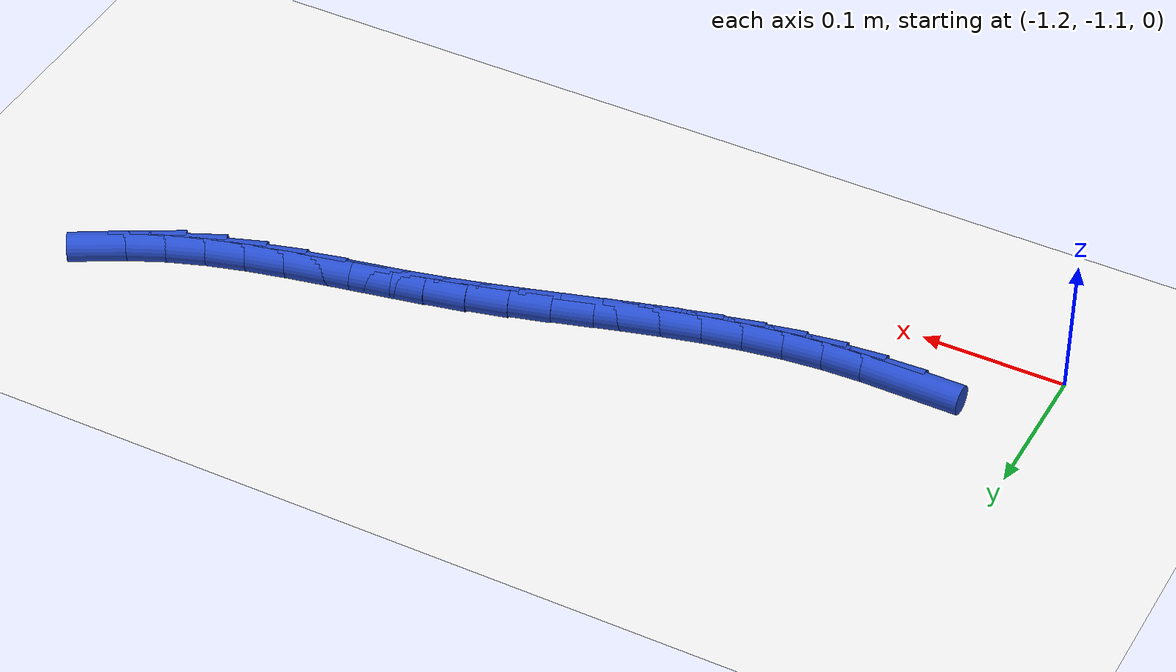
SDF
<sdf version="1.6">
 <world name="default">
  <model name="ground_plane">
   <static>1</static>
   <link name="link">
    <collision name="collision">
     <geometry><plane><normal>0 0 1</normal><size>100 100</size></plane></geometry>
     <surface><friction><ode><mu>100</mu><mu2>50</mu2></ode></friction></surface>
    </collision>
    <visual name="visual">
     <cast_shadows>0</cast_shadows>
     <geometry><plane><normal>0 0 1</normal><size>100 100</size></plane></geometry>
     <material>
      <script><uri>file://media/materials/scripts/gazebo.material</uri><name>Gazebo/WhiteGlow</name></script>
     </material>
    </visual>
   </link>
  </model>
  <model name="line">
   <link name="link_180">
    <pose>-1.1105217474816724 -1.0451640369791646 0.01 0 1.57 -0.0032937836654081836</pose>
    <collision name="collision">
     <geometry><cylinder><radius>0.01</radius><length>0.08</length></cylinder></geometry>
    </collision>
    <visual name="visual">
     <material>
      <script><name>Gazebo/Blue</name><uri>file://media/materials/scripts/gazebo.material</uri></script>
     </material>
     <geometry><cylinder><radius>0.01</radius><length>0.08</length></cylinder></geometry>
    </visual>
   </link>
   <link name="link_181">
    <pose>-1.0829268203500904 -1.0452549290280952 0.01 0 1.57 0.04664341396619645</pose>
    <collision name="collision">
     <geometry><cylinder><radius>0.01</radius><length>0.08</length></cylinder></geometry>
    </collision>
    <visual name="visual">
     <material>
      <script><name>Gazebo/Blue</name><uri>file://media/materials/scripts/gazebo.material</uri></script>
     </material>
     <geometry><cylinder><radius>0.01</radius><length>0.08</length></cylinder></geometry>
    </visual>
   </link>
   <link name="link_182">
    <pose>-1.0555087327566097 -1.043975127568209 0.01 0 1.57 0.10656758026437411</pose>
    <collision name="collision">
     <geometry><cylinder><radius>0.01</radius><length>0.08</length></cylinder></geometry>
    </collision>
    <visual name="visual">
     <material>
      <script><name>Gazebo/Blue</name><uri>file://media/materials/scripts/gazebo.material</uri></script>
     </material>
     <geometry><cylinder><radius>0.01</radius><length>0.08</length></cylinder></geometry>
    </visual>
   </link>
   <link name="link_183">
    <pose>-1.0282594309316895 -1.0410601924133953 0.01 0 1.57 0.16643091375896282</pose>
    <collision name="collision">
     <geometry><cylinder><radius>0.01</radius><length>0.08</length></cylinder></geometry>
    </collision>
    <visual name="visual">
     <material>
      <script><name>Gazebo/Blue</name><uri>file://media/materials/scripts/gazebo.material</uri></script>
     </material>
     <geometry><cylinder><radius>0.01</radius><length>0.08</length></cylinder></geometry>
    </visual>
   </link>
   <link name="link_184">
    <pose>-1.001152806143657 -1.0365066913855807 0.01 0 1.57 0.21515860967188552</pose>
    <collision name="collision">
     <geometry><cylinder><radius>0.01</radius><length>0.08</length></cylinder></geometry>
    </collision>
    <visual name="visual">
     <material>
      <script><name>Gazebo/Blue</name><uri>file://media/materials/scripts/gazebo.material</uri></script>
     </material>
     <geometry><cylinder><radius>0.01</radius><length>0.08</length></cylinder></geometry>
    </visual>
   </link>
   <link name="link_185">
    <pose>-0.9741425072280128 -1.0306038230544505 0.01 0 1.57 0.25219804654284933</pose>
    <collision name="collision">
     <geometry><cylinder><radius>0.01</radius><length>0.08</length></cylinder></geometry>
    </collision>
    <visual name="visual">
     <material>
      <script><name>Gazebo/Blue</name><uri>file://media/materials/scripts/gazebo.material</uri></script>
     </material>
     <geometry><cylinder><radius>0.01</radius><length>0.08</length></cylinder></geometry>
    </visual>
   </link>
   <link name="link_186">
    <pose>-0.94718111079143 -1.0236562864548564 0.01 0 1.57 0.27777395206776523</pose>
    <collision name="collision">
     <geometry><cylinder><radius>0.01</radius><length>0.08</length></cylinder></geometry>
    </collision>
    <visual name="visual">
     <material>
      <script><name>Gazebo/Blue</name><uri>file://media/materials/scripts/gazebo.material</uri></script>
     </material>
     <geometry><cylinder><radius>0.01</radius><length>0.08</length></cylinder></geometry>
    </visual>
   </link>
   <link name="link_187">
    <pose>-0.9202211934405784 -1.0159687806216489 0.01 0 1.57 0.2921706398389922</pose>
    <collision name="collision">
     <geometry><cylinder><radius>0.01</radius><length>0.08</length></cylinder></geometry>
    </collision>
    <visual name="visual">
     <material>
      <script><name>Gazebo/Blue</name><uri>file://media/materials/scripts/gazebo.material</uri></script>
     </material>
     <geometry><cylinder><radius>0.01</radius><length>0.08</length></cylinder></geometry>
    </visual>
   </link>
   <link name="link_188">
    <pose>-0.8932153317821279 -1.0078460045896787 0.01 0 1.57 0.2956352118282994</pose>
    <collision name="collision">
     <geometry><cylinder><radius>0.01</radius><length>0.08</length></cylinder></geometry>
    </collision>
    <visual name="visual">
     <material>
      <script><name>Gazebo/Blue</name><uri>file://media/materials/scripts/gazebo.material</uri></script>
     </material>
     <geometry><cylinder><radius>0.01</radius><length>0.08</length></cylinder></geometry>
    </visual>
   </link>
   <link name="link_189">
    <pose>-0.8661161024227497 -0.999592657393797 0.01 0 1.57 0.2883288556586588</pose>
    <collision name="collision">
     <geometry><cylinder><radius>0.01</radius><length>0.08</length></cylinder></geometry>
    </collision>
    <visual name="visual">
     <material>
      <script><name>Gazebo/Blue</name><uri>file://media/materials/scripts/gazebo.material</uri></script>
     </material>
     <geometry><cylinder><radius>0.01</radius><length>0.08</length></cylinder></geometry>
    </visual>
   </link>
   <link name="link_190">
    <pose>-0.8388760819691141 -0.9915134380688548 0.01 0 1.57 0.27031847961498556</pose>
    <collision name="collision">
     <geometry><cylinder><radius>0.01</radius><length>0.08</length></cylinder></geometry>
    </collision>
    <visual name="visual">
     <material>
      <script><name>Gazebo/Blue</name><uri>file://media/materials/scripts/gazebo.material</uri></script>
     </material>
     <geometry><cylinder><radius>0.01</radius><length>0.08</length></cylinder></geometry>
    </visual>
   </link>
   <link name="link_191">
    <pose>-0.811447847027892 -0.9839130456497028 0.01 0 1.57 0.24176449990319854</pose>
    <collision name="collision">
     <geometry><cylinder><radius>0.01</radius><length>0.08</length></cylinder></geometry>
    </collision>
    <visual name="visual">
     <material>
      <script><name>Gazebo/Blue</name><uri>file://media/materials/scripts/gazebo.material</uri></script>
     </material>
     <geometry><cylinder><radius>0.01</radius><length>0.08</length></cylinder></geometry>
    </visual>
   </link>
   <link name="link_192">
    <pose>-0.783785359242346 -0.9770918169149208 0.01 0 1.57 0.2132960987820833</pose>
    <collision name="collision">
     <geometry><cylinder><radius>0.01</radius><length>0.08</length></cylinder></geometry>
    </collision>
    <visual name="visual">
     <material>
      <script><name>Gazebo/Blue</name><uri>file://media/materials/scripts/gazebo.material</uri></script>
     </material>
     <geometry><cylinder><radius>0.01</radius><length>0.08</length></cylinder></geometry>
    </visual>
   </link>
   <link name="link_193">
    <pose>-0.7559347978411498 -0.9710596437969737 0.01 0 1.57 0.2019478487799076</pose>
    <collision name="collision">
     <geometry><cylinder><radius>0.01</radius><length>0.08</length></cylinder></geometry>
    </collision>
    <visual name="visual">
     <material>
      <script><name>Gazebo/Blue</name><uri>file://media/materials/scripts/gazebo.material</uri></script>
     </material>
     <geometry><cylinder><radius>0.01</radius><length>0.08</length></cylinder></geometry>
    </visual>
   </link>
   <link name="link_194">
    <pose>-0.7280907826685525 -0.9653588955583472 0.01 0 1.57 0.20931671842228322</pose>
    <collision name="collision">
     <geometry><cylinder><radius>0.01</radius><length>0.08</length></cylinder></geometry>
    </collision>
    <visual name="visual">
     <material>
      <script><name>Gazebo/Blue</name><uri>file://media/materials/scripts/gazebo.material</uri></script>
     </material>
     <geometry><cylinder><radius>0.01</radius><length>0.08</length></cylinder></geometry>
    </visual>
   </link>
   <link name="link_195">
    <pose>-0.7004613682616811 -0.9594896280861755 0.01 0 1.57 0.23582676712874948</pose>
    <collision name="collision">
     <geometry><cylinder><radius>0.01</radius><length>0.08</length></cylinder></geometry>
    </collision>
    <visual name="visual">
     <material>
      <script><name>Gazebo/Blue</name><uri>file://media/materials/scripts/gazebo.material</uri></script>
     </material>
     <geometry><cylinder><radius>0.01</radius><length>0.08</length></cylinder></geometry>
    </visual>
   </link>
   <link name="link_196">
    <pose>-0.6732546091576623 -0.9529518972675943 0.01 0 1.57 0.28222562807845986</pose>
    <collision name="collision">
     <geometry><cylinder><radius>0.01</radius><length>0.08</length></cylinder></geometry>
    </collision>
    <visual name="visual">
     <material>
      <script><name>Gazebo/Blue</name><uri>file://media/materials/scripts/gazebo.material</uri></script>
     </material>
     <geometry><cylinder><radius>0.01</radius><length>0.08</length></cylinder></geometry>
    </visual>
   </link>
   <link name="link_197">
    <pose>-0.6466785598936233 -0.9452457589897384 0.01 0 1.57 0.34930202195136256</pose>
    <collision name="collision">
     <geometry><cylinder><radius>0.01</radius><length>0.08</length></cylinder></geometry>
    </collision>
    <visual name="visual">
     <material>
      <script><name>Gazebo/Blue</name><uri>file://media/materials/scripts/gazebo.material</uri></script>
     </material>
     <geometry><cylinder><radius>0.01</radius><length>0.08</length></cylinder></geometry>
    </visual>
   </link>
   <link name="link_198">
    <pose>-0.6209412750066907 -0.9358712691397426 0.01 0 1.57 0.43255801336721394</pose>
    <collision name="collision">
     <geometry><cylinder><radius>0.01</radius><length>0.08</length></cylinder></geometry>
    </collision>
    <visual name="visual">
     <material>
      <script><name>Gazebo/Blue</name><uri>file://media/materials/scripts/gazebo.material</uri></script>
     </material>
     <geometry><cylinder><radius>0.01</radius><length>0.08</length></cylinder></geometry>
    </visual>
   </link>
   <link name="link_199">
    <pose>-0.5961978865700046 -0.9244467341320152 0.01 0 1.57 0.5111497401167178</pose>
    <collision name="collision">
     <geometry><cylinder><radius>0.01</radius><length>0.08</length></cylinder></geometry>
    </collision>
    <visual name="visual">
     <material>
      <script><name>Gazebo/Blue</name><uri>file://media/materials/scripts/gazebo.material</uri></script>
     </material>
     <geometry><cylinder><radius>0.01</radius><length>0.08</length></cylinder></geometry>
    </visual>
   </link>
  </model>
 </world>
</sdf>
